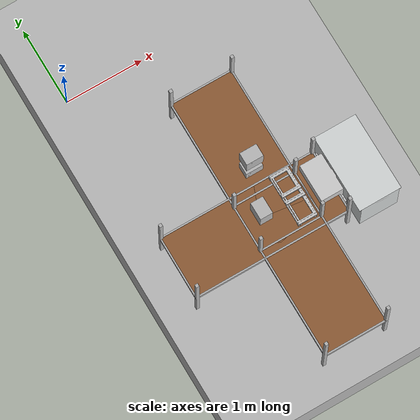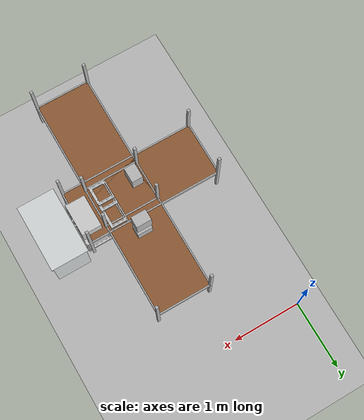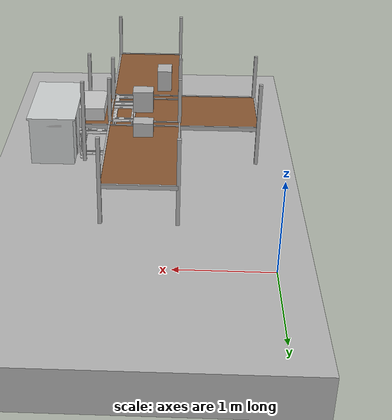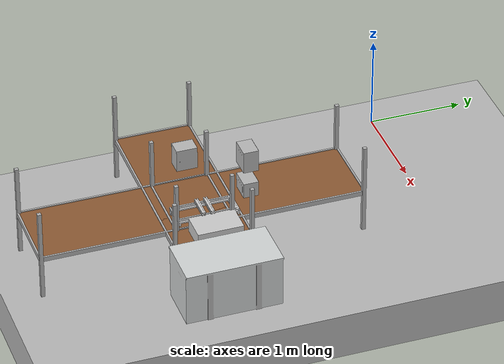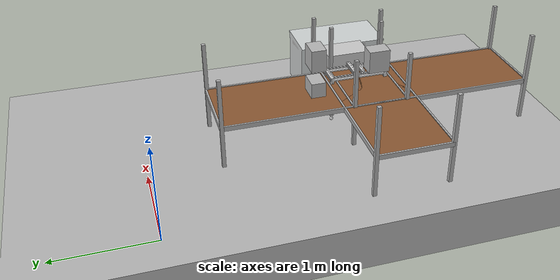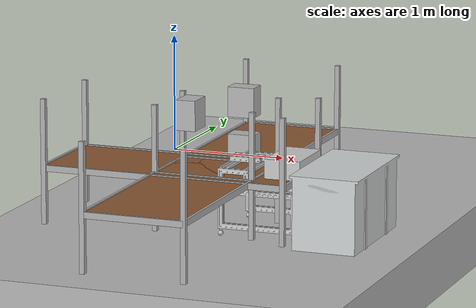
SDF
<?xml version="1.0"?>
<sdf version="1.6">
  <world name="default">

    <gui>
      <camera name="user_default">
        <pose>3.874 -2.386 1.218 0 0.115 3.124</pose> <!--UR5 View -->
      </camera>
    </gui>

    <light name="light0" type="directional">
      <pose frame="">0 -18.818 8 0.75 -0 0</pose>
      <diffuse>0.5 0.5 0.5 1</diffuse>
      <specular>0.1 0.1 0.1 1</specular>
      <direction>0.1 0.1 -0.9</direction>
      <attenuation>
        <range>20</range>
        <constant>0.5</constant>
        <linear>0.01</linear>
        <quadratic>0.001</quadratic>
      </attenuation>
      <cast_shadows>0</cast_shadows>
    </light>

    <light name="light3" type="directional">
      <pose frame="">3.9239 1.64974 4 0 1.2 0</pose>
      <diffuse>0.5 0.5 0.5 1</diffuse>
      <specular>0.1 0.1 0.1 1</specular>
      <direction>0.1 0.1 -0.9</direction>
      <attenuation>
        <range>20</range>
        <constant>0.5</constant>
        <linear>0.01</linear>
        <quadratic>0.001</quadratic>
      </attenuation>
      <cast_shadows>0</cast_shadows>
    </light>

    <light name="light5" type="directional">
      <pose frame="">0.454419 12.4783 5 -0.8 0 0</pose>
      <diffuse>0.5 0.5 0.5 1</diffuse>
      <specular>0.1 0.1 0.1 1</specular>
      <direction>0.1 0.1 -0.9</direction>
      <attenuation>
        <range>20</range>
        <constant>0.5</constant>
        <linear>0.01</linear>
        <quadratic>0.001</quadratic>
      </attenuation>
      <cast_shadows>0</cast_shadows>
    </light>

    <scene>
		<shadows>false</shadows>
		<ambient>0.5 0.5 0.5 1.0</ambient>
    <grid>false</grid>
      <sky>
        <time>22</time>
        <sunrise>20</sunrise>
        <sunset>21</sunset>
        <clouds>
          <humidity>0</humidity>
        </clouds>
      </sky>
    </scene>

    <include>
      <uri>model://ground_plane</uri>
    </include>

  <include>
      <uri>model://moon_surface</uri>
      <pose>0 0 -0.25 0 0 0</pose>
	</include>

  <!-- NOISE BOX -->
  <!-- NOISE BOX -->

  <!-- RACK 1 -->
  <include>
      <uri>model://rack</uri>
      <name>rack1</name>
      <pose>1.05 -2.455 0.0 0 -0 3.14</pose>
	</include>

  <include>
      <uri>model://boxes/box_1</uri>
      <name>box1</name>
      <pose>1.13 -2.455 0.89 0 0 0.0</pose>
	</include>

  <!-- RACK 1 -->

  <!-- RACK 2 -->
  <include>
      <uri>model://rack</uri>
      <name>rack2</name>
      <pose>1.35 -1.755 0.0 0 0 1.57</pose>
	</include>

  <include>
      <uri>model://boxes/box_3</uri>
      <name>box3</name>
      <pose>1.35 -1.865 0.51 0 0 -1.57</pose>
	</include>

  <include>
      <uri>model://boxes/box_49</uri>
      <name>box49</name>
      <pose>1.35 -1.865 0.89 0 0 -1.57</pose>
	</include>
  <!-- RACK 2 -->

  <!-- RACK 3 -->
  <include>
      <uri>model://rack</uri>
      <name>rack3</name>
      <pose>1.35 -3.155 0.0 0 0 -1.57</pose>
	</include>
  <!-- RACK 3 -->

  <include>
      <uri>model://arm_base</uri>
      <name>arm_base</name>
      <pose>1.78 -2.4 0.253 0 -0 0.0</pose>
	</include>

  <include>
      <uri>model://drop_table</uri>
      <name>drop_table</name>
      <pose>2.4 -2.45 0 0 -0 0.0</pose>
	</include>

  <plugin name="gazebo_link_ur5_attacher" filename="libgazebo_link_ur5_attacher.so"/>

  <plugin name="gazebo_ros_state" filename="libgazebo_ros_state.so">
      <ros>
        <namespace>/_makeit</namespace>
      </ros>

      <update_rate>1.0</update_rate>
  </plugin>

  </world>
</sdf>

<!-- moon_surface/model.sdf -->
<sdf version="1.6">
  <model name="moon_surface">
    <static>true</static>

    <link name="link">
      <pose>0 0 0.003 0 0 0</pose>

      <visual name="visual1">
        <cast_shadows>false</cast_shadows>
        <geometry>
          <mesh><uri>model://moon_surface/meshes/moon_surface.dae</uri></mesh>
        </geometry>
        <material>
          <shader type='pixel'/>
        </material>
        <pose>0 0 0 0 0 0</pose>
        <transparency>0</transparency>
      </visual>
    </link>
  </model>
</sdf>

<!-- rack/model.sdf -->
<sdf version='1.6'>
  <model name='rack'>
    <link name="surface">
      <inertial>
          <mass>0.1</mass>
          <inertia>
              <ixx>0.00001</ixx>
              <ixy>0.000</ixy>
              <ixz>0.000</ixz>
              <iyy>0.00001</iyy>
              <iyz>0.000</iyz>
              <izz>0.00001</izz>
          </inertia>
      </inertial>
      <visual name='surface_visual'>
        <pose relative_to=''>0 0 0.45 0 0 0</pose>
        <geometry>
          <box>
            <size>2 0.8 0.03</size>
          </box>
        </geometry>
        <material>
          <ambient>0.55 0.35 0.2 1</ambient>
          <diffuse>0.55 0.35 0.2 1</diffuse>
          <specular>0.1 0.1 0.1 1</specular>
          <emissive>0 0 0 1</emissive>
        </material>
        <transparency>0</transparency>
        <cast_shadows>1</cast_shadows>
      </visual>
      <collision name='surface_collision'>
        <pose relative_to=''>0 0 0.45 0 0 0</pose>
        <laser_retro>0</laser_retro>
        <max_contacts>10</max_contacts>
        <geometry>
          <box>
            <size>2 0.82 0.03</size>
          </box>
        </geometry>
        <surface>
          <friction>
            <ode>
              <mu>1000000</mu>
              <mu2>1000000</mu2>
            </ode>
          </friction>
          <bounce>
            <restitution_coefficient>0</restitution_coefficient>
          </bounce>
          <contact>
            <ode>
              <kp>1e13</kp>
              <kd>1</kd>
            </ode>
          </contact>
        </surface>
      </collision>

      <visual name='left_holding_visual'>
        <pose relative_to=''>0 0.4 0.45 0 0 0</pose>
        <geometry>
          <box>
            <size>1.98 0.02 0.05</size>
          </box>
        </geometry>
        <material>
          <ambient>0.3 0.3 0.3 1</ambient>
          <diffuse>0.7 0.7 0.7 1</diffuse>
          <specular>0.01 0.01 0.01 1</specular>
          <emissive>0 0 0 1</emissive>
          <pbr>
            <metal>
              <roughness>0.8</roughness>
              <metalness>0.1</metalness>
            </metal>
          </pbr>
        </material>
        <transparency>0</transparency>
        <cast_shadows>1</cast_shadows>
      </visual>

      <visual name='right_holding_visual'>
        <pose relative_to=''>0 -0.4 0.45 0 0 0</pose>
        <geometry>
          <box>
            <size>1.98 0.02 0.05</size>
          </box>
        </geometry>
        <material>
          <ambient>0.3 0.3 0.3 1</ambient>
          <diffuse>0.7 0.7 0.7 1</diffuse>
          <specular>0.01 0.01 0.01 1</specular>
          <emissive>0 0 0 1</emissive>
          <pbr>
            <metal>
              <roughness>0.8</roughness>
              <metalness>0.1</metalness>
            </metal>
          </pbr>
        </material>
        <transparency>0</transparency>
        <cast_shadows>1</cast_shadows>
      </visual>

      <visual name='front_holding_visual'>
        <pose relative_to=''>1.0 0 0.45 0 0 1.57</pose>
        <geometry>
          <box>
            <size>0.8 0.02 0.05</size>
          </box>
        </geometry>
        <material>
          <ambient>0.3 0.3 0.3 1</ambient>
          <diffuse>0.7 0.7 0.7 1</diffuse>
          <specular>0.01 0.01 0.01 1</specular>
          <emissive>0 0 0 1</emissive>
          <pbr>
            <metal>
              <roughness>0.8</roughness>
              <metalness>0.1</metalness>
            </metal>
          </pbr>
        </material>
        <transparency>0</transparency>
        <cast_shadows>1</cast_shadows>
      </visual>

      <visual name='back_holding_visual'>
        <pose relative_to=''>-1.0 0 0.45 0 0 1.57</pose>
        <geometry>
          <box>
            <size>0.8 0.02 0.05</size>
          </box>
        </geometry>
        <material>
          <ambient>0.3 0.3 0.3 1</ambient>
          <diffuse>0.7 0.7 0.7 1</diffuse>
          <specular>0.01 0.01 0.01 1</specular>
          <emissive>0 0 0 1</emissive>
          <pbr>
            <metal>
              <roughness>0.8</roughness>
              <metalness>0.1</metalness>
            </metal>
          </pbr>
        </material>
        <transparency>0</transparency>
        <cast_shadows>1</cast_shadows>
      </visual>

      <visual name='front_left_leg_visual'>
        <pose relative_to=''>0.99 0.4 0.5 0 0 0</pose>
        <geometry>
          <box>
            <size>0.04 0.04 1.0</size>
          </box>
        </geometry>
        <material>
          <ambient>0.3 0.3 0.3 1</ambient>
          <diffuse>0.7 0.7 0.7 1</diffuse>
          <specular>0.01 0.01 0.01 1</specular>
          <emissive>0 0 0 1</emissive>
          <pbr>
            <metal>
              <roughness>0.8</roughness>
              <metalness>0.1</metalness>
            </metal>
          </pbr>
        </material>
        <cast_shadows>1</cast_shadows>
      </visual>
      <collision name='front_left_leg_collision'>
        <pose relative_to=''>0.99 0.4 0.5 0 0 0</pose>
        <laser_retro>0</laser_retro>
        <max_contacts>10</max_contacts>
        <geometry>
          <box>
            <size>0.04 0.04 1.0</size>
          </box>
        </geometry>
        <surface>
          <friction>
            <ode>
              <mu>0.1</mu>
              <mu2>0.1</mu2>
            </ode>
          </friction>
          <bounce>
            <restitution_coefficient>0</restitution_coefficient>
          </bounce>
          <contact>
            <ode>
              <kp>1e6</kp>
              <kd>1</kd>
            </ode>
          </contact>
        </surface>
      </collision>

      <visual name='front_right_leg_visual'>
        <pose relative_to=''>0.99 -0.4 0.5 0 0 0</pose>
        <geometry>
          <box>
            <size>0.04 0.04 1.0</size>
          </box>
        </geometry>
        <material>
          <ambient>0.3 0.3 0.3 1</ambient>
          <diffuse>0.7 0.7 0.7 1</diffuse>
          <specular>0.01 0.01 0.01 1</specular>
          <emissive>0 0 0 1</emissive>
          <pbr>
            <metal>
              <roughness>0.8</roughness>
              <metalness>0.1</metalness>
            </metal>
          </pbr>
        </material>
        <cast_shadows>1</cast_shadows>
      </visual>
      <collision name='front_right_leg_collision'>
        <pose relative_to=''>0.99 -0.4 0.5 0 0 0</pose>
        <laser_retro>0</laser_retro>
        <max_contacts>10</max_contacts>
        <geometry>
          <box>
            <size>0.04 0.04 1.0</size>
          </box>
        </geometry>
        <surface>
          <friction>
            <ode>
              <mu>0.1</mu>
              <mu2>0.1</mu2>
            </ode>
          </friction>
          <bounce>
            <restitution_coefficient>0</restitution_coefficient>
          </bounce>
          <contact>
            <ode>
              <kp>1e6</kp>
              <kd>1</kd>
            </ode>
          </contact>
        </surface>
      </collision>

      <visual name='back_left_leg_visual'>
        <pose relative_to=''>-0.99 0.4 0.5 0 0 0</pose>
        <geometry>
          <box>
            <size>0.04 0.04 1.0</size>
          </box>
        </geometry>
        <material>
          <ambient>0.3 0.3 0.3 1</ambient>
          <diffuse>0.7 0.7 0.7 1</diffuse>
          <specular>0.01 0.01 0.01 1</specular>
          <emissive>0 0 0 1</emissive>
          <pbr>
            <metal>
              <roughness>0.8</roughness>
              <metalness>0.1</metalness>
            </metal>
          </pbr>
        </material>
        <cast_shadows>1</cast_shadows>
      </visual>
      <collision name='back_left_leg_collision'>
        <pose relative_to=''>-0.99 0.4 0.5 0 0 0</pose>
        <laser_retro>0</laser_retro>
        <max_contacts>10</max_contacts>
        <geometry>
          <box>
            <size>0.04 0.04 1.0</size>
          </box>
        </geometry>
        <surface>
          <friction>
            <ode>
              <mu>0.1</mu>
              <mu2>0.1</mu2>
            </ode>
          </friction>
          <bounce>
            <restitution_coefficient>0</restitution_coefficient>
          </bounce>
          <contact>
            <ode>
              <kp>1e6</kp>
              <kd>1</kd>
            </ode>
          </contact>
        </surface>
      </collision>

      <visual name='back_right_leg_visual'>
        <pose relative_to=''>-0.99 -0.4 0.5 0 0 0</pose>
        <geometry>
          <box>
            <size>0.04 0.04 1.0</size>
          </box>
        </geometry>
        <material>
          <ambient>0.3 0.3 0.3 1</ambient>
          <diffuse>0.7 0.7 0.7 1</diffuse>
          <specular>0.01 0.01 0.01 1</specular>
          <emissive>0 0 0 1</emissive>
          <pbr>
            <metal>
              <roughness>0.8</roughness>
              <metalness>0.1</metalness>
            </metal>
          </pbr>
        </material>
        <cast_shadows>1</cast_shadows>
      </visual>
      <collision name='back_right_leg_collision'>
        <pose relative_to=''>-0.99 -0.4 0.5 0 0 0</pose>
        <laser_retro>0</laser_retro>
        <max_contacts>10</max_contacts>
        <geometry>
          <box>
            <size>0.04 0.04 1.0</size>
          </box>
        </geometry>
        <surface>
          <friction>
            <ode>
              <mu>0.1</mu>
              <mu2>0.1</mu2>
            </ode>
          </friction>
          <bounce>
            <restitution_coefficient>0</restitution_coefficient>
          </bounce>
          <contact>
            <ode>
              <kp>1e6</kp>
              <kd>1</kd>
            </ode>
          </contact>
        </surface>
      </collision>
    </link>

  </model>
</sdf>

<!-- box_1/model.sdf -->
<sdf version='1.7'>
  <model name='box_1'>
    <link name='link'>
      <self_collide>0</self_collide>
      <inertial>
        <pose>0 0 0 0 -0 0</pose>
        <inertia>
          <ixx>0.00220983</ixx>
          <ixy>0</ixy>
          <ixz>0</ixz>
          <iyy>0.00128087</iyy>
          <iyz>0</iyz>
          <izz>0.00244903</izz>
        </inertia>
        <mass>0.1</mass>
      </inertial>
      <enable_wind>0</enable_wind>
      <kinematic>0</kinematic>
      <pose>0 0 0 0 -0 0</pose>
      <gravity>1</gravity>
      <visual name='visual1'>
        <cast_shadows>0</cast_shadows>
        <geometry>
          <mesh>
            <uri>model://boxes/box_1/meshes/box.dae</uri>
          </mesh>
        </geometry>
        <material>
          <shader type='pixel'>
            <normal_map>__default__</normal_map>
          </shader>
          <emissive>0 0 0 1</emissive>
        </material>
        <pose>0 0 -0.12 0 -0 0</pose>
        <transparency>0</transparency>
      </visual>
      <collision name='collision_0'>
        <laser_retro>0</laser_retro>
        <max_contacts>10</max_contacts>
        <pose>0 0 0 0 -0 0</pose>
        <geometry>
          <box>
            <size>0.16 0.22 0.24</size>
          </box>
        </geometry>
        <surface>
          <friction>
            <ode>
              <mu>1</mu>
              <mu2>1</mu2>
              <fdir1>0 0 0</fdir1>
              <slip1>0</slip1>
              <slip2>0</slip2>
            </ode>
            <torsional>
              <coefficient>1</coefficient>
              <patch_radius>0</patch_radius>
              <surface_radius>0</surface_radius>
              <use_patch_radius>1</use_patch_radius>
              <ode>
                <slip>0</slip>
              </ode>
            </torsional>
          </friction>
          <bounce>
            <restitution_coefficient>0</restitution_coefficient>
            <threshold>1e+06</threshold>
          </bounce>
          <contact>
            <collide_without_contact>0</collide_without_contact>
            <collide_without_contact_bitmask>1</collide_without_contact_bitmask>
            <collide_bitmask>1</collide_bitmask>
            <ode>
              <soft_cfm>0</soft_cfm>
              <soft_erp>0.2</soft_erp>
              <kp>1e+13</kp>
              <kd>1</kd>
              <max_vel>0.01</max_vel>
              <min_depth>0</min_depth>
            </ode>
            <bullet>
              <split_impulse>1</split_impulse>
              <split_impulse_penetration_threshold>-0.01</split_impulse_penetration_threshold>
              <soft_cfm>0</soft_cfm>
              <soft_erp>0.2</soft_erp>
              <kp>1e+13</kp>
              <kd>1</kd>
            </bullet>
          </contact>
        </surface>
      </collision>
    </link>
    <static>0</static>
    <allow_auto_disable>1</allow_auto_disable>
  </model>
</sdf>

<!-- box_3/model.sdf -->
<sdf version='1.7'>
  <model name='box_3'>
    <link name='link'>
      <self_collide>0</self_collide>
      <inertial>
        <pose>0 0 0 0 -0 0</pose>
        <inertia>
          <ixx>0.00220983</ixx>
          <ixy>0</ixy>
          <ixz>0</ixz>
          <iyy>0.00128087</iyy>
          <iyz>0</iyz>
          <izz>0.00244903</izz>
        </inertia>
        <mass>0.1</mass>
      </inertial>
      <enable_wind>0</enable_wind>
      <kinematic>0</kinematic>
      <pose>0 0 0 0 -0 0</pose>
      <gravity>1</gravity>
      <visual name='visual1'>
        <cast_shadows>0</cast_shadows>
        <geometry>
          <mesh>
            <uri>model://boxes/box_3/meshes/box.dae</uri>
          </mesh>
        </geometry>
        <material>
          <shader type='pixel'>
            <normal_map>__default__</normal_map>
          </shader>
          <emissive>0 0 0 1</emissive>
        </material>
        <pose>0 0 -0.12 0 -0 0</pose>
        <transparency>0</transparency>
      </visual>
      <collision name='collision_0'>
        <laser_retro>0</laser_retro>
        <max_contacts>10</max_contacts>
        <pose>0 0 0 0 -0 0</pose>
        <geometry>
          <box>
            <size>0.16 0.22 0.24</size>
          </box>
        </geometry>
        <surface>
          <friction>
            <ode>
              <mu>1</mu>
              <mu2>1</mu2>
              <fdir1>0 0 0</fdir1>
              <slip1>0</slip1>
              <slip2>0</slip2>
            </ode>
            <torsional>
              <coefficient>1</coefficient>
              <patch_radius>0</patch_radius>
              <surface_radius>0</surface_radius>
              <use_patch_radius>1</use_patch_radius>
              <ode>
                <slip>0</slip>
              </ode>
            </torsional>
          </friction>
          <bounce>
            <restitution_coefficient>0</restitution_coefficient>
            <threshold>1e+06</threshold>
          </bounce>
          <contact>
            <collide_without_contact>0</collide_without_contact>
            <collide_without_contact_bitmask>1</collide_without_contact_bitmask>
            <collide_bitmask>1</collide_bitmask>
            <ode>
              <soft_cfm>0</soft_cfm>
              <soft_erp>0.2</soft_erp>
              <kp>1e+13</kp>
              <kd>1</kd>
              <max_vel>0.01</max_vel>
              <min_depth>0</min_depth>
            </ode>
            <bullet>
              <split_impulse>1</split_impulse>
              <split_impulse_penetration_threshold>-0.01</split_impulse_penetration_threshold>
              <soft_cfm>0</soft_cfm>
              <soft_erp>0.2</soft_erp>
              <kp>1e+13</kp>
              <kd>1</kd>
            </bullet>
          </contact>
        </surface>
      </collision>
    </link>
    <static>0</static>
    <allow_auto_disable>1</allow_auto_disable>
  </model>
</sdf>

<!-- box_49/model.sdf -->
<sdf version='1.7'>
  <model name='box_49'>
    <link name='link'>
      <self_collide>0</self_collide>
      <inertial>
        <pose>0 0 0 0 -0 0</pose>
        <inertia>
          <ixx>0.00220983</ixx>
          <ixy>0</ixy>
          <ixz>0</ixz>
          <iyy>0.00128087</iyy>
          <iyz>0</iyz>
          <izz>0.00244903</izz>
        </inertia>
        <mass>0.1</mass>
      </inertial>
      <enable_wind>0</enable_wind>
      <kinematic>0</kinematic>
      <pose>0 0 0 0 -0 0</pose>
      <gravity>1</gravity>
      <visual name='visual1'>
        <cast_shadows>0</cast_shadows>
        <geometry>
          <mesh>
            <uri>model://boxes/box_49/meshes/box.dae</uri>
          </mesh>
        </geometry>
        <material>
          <shader type='pixel'>
            <normal_map>__default__</normal_map>
          </shader>
          <emissive>0 0 0 1</emissive>
        </material>
        <pose>0 0 -0.12 0 -0 0</pose>
        <transparency>0</transparency>
      </visual>
      <collision name='collision_0'>
        <laser_retro>0</laser_retro>
        <max_contacts>10</max_contacts>
        <pose>0 0 0 0 -0 0</pose>
        <geometry>
          <box>
            <size>0.16 0.22 0.24</size>
          </box>
        </geometry>
        <surface>
          <friction>
            <ode>
              <mu>1</mu>
              <mu2>1</mu2>
              <fdir1>0 0 0</fdir1>
              <slip1>0</slip1>
              <slip2>0</slip2>
            </ode>
            <torsional>
              <coefficient>1</coefficient>
              <patch_radius>0</patch_radius>
              <surface_radius>0</surface_radius>
              <use_patch_radius>1</use_patch_radius>
              <ode>
                <slip>0</slip>
              </ode>
            </torsional>
          </friction>
          <bounce>
            <restitution_coefficient>0</restitution_coefficient>
            <threshold>1e+06</threshold>
          </bounce>
          <contact>
            <collide_without_contact>0</collide_without_contact>
            <collide_without_contact_bitmask>1</collide_without_contact_bitmask>
            <collide_bitmask>1</collide_bitmask>
            <ode>
              <soft_cfm>0</soft_cfm>
              <soft_erp>0.2</soft_erp>
              <kp>1e+13</kp>
              <kd>1</kd>
              <max_vel>0.01</max_vel>
              <min_depth>0</min_depth>
            </ode>
            <bullet>
              <split_impulse>1</split_impulse>
              <split_impulse_penetration_threshold>-0.01</split_impulse_penetration_threshold>
              <soft_cfm>0</soft_cfm>
              <soft_erp>0.2</soft_erp>
              <kp>1e+13</kp>
              <kd>1</kd>
            </bullet>
          </contact>
        </surface>
      </collision>
    </link>
    <static>0</static>
    <allow_auto_disable>1</allow_auto_disable>
  </model>
</sdf>

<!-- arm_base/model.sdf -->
<sdf version='1.7'>
  <model name='arm_base'>
    <link name='link'>
      <inertial>
        <mass>1</mass>
        <inertia>
          <ixx>0.166667</ixx>
          <ixy>0</ixy>
          <ixz>0</ixz>
          <iyy>0.166667</iyy>
          <iyz>0</iyz>
          <izz>0.166667</izz>
        </inertia>
        <pose>0 0 0 0 -0 0</pose>
      </inertial>
      <self_collide>0</self_collide>
      <enable_wind>0</enable_wind>
      <kinematic>0</kinematic>
      <pose>0 0 0 0 -0 0</pose>
      <gravity>1</gravity>
      <visual name='visual1'>
        <cast_shadows>0</cast_shadows>
        <geometry>
          <mesh>
            <uri>model://arm_base/meshes/arm_base.dae</uri>
          </mesh>
        </geometry>
        <material>
          <shader type='pixel'>
            <normal_map>__default__</normal_map>
          </shader>
          <emissive>0 0 0 1</emissive>

        </material>
        <pose>0 0 -0.25 0 -0 0</pose>
        <transparency>0</transparency>
        <pose>0 0 0 0 -0 0</pose>
        <transparency>0</transparency>
      </visual>
      <collision name='collision'>
        <laser_retro>0</laser_retro>
        <max_contacts>10</max_contacts>
        <pose>0 0 0 0 -0 0</pose>
        <geometry>
          <box>
            <size>0.7 0.7 0.52</size>
          </box>
        </geometry>
        <surface>
          <friction>
            <ode>
              <mu>1</mu>
              <mu2>1</mu2>
              <fdir1>0 0 0</fdir1>
              <slip1>0</slip1>
              <slip2>0</slip2>
            </ode>
            <torsional>
              <coefficient>1</coefficient>
              <patch_radius>0</patch_radius>
              <surface_radius>0</surface_radius>
              <use_patch_radius>1</use_patch_radius>
              <ode>
                <slip>0</slip>
              </ode>
            </torsional>
          </friction>
          <bounce>
            <restitution_coefficient>0</restitution_coefficient>
            <threshold>1e+06</threshold>
          </bounce>
          <contact>
            <collide_without_contact>0</collide_without_contact>
            <collide_without_contact_bitmask>1</collide_without_contact_bitmask>
            <collide_bitmask>1</collide_bitmask>
            <ode>
              <soft_cfm>0</soft_cfm>
              <soft_erp>0.2</soft_erp>
              <kp>1e+13</kp>
              <kd>1</kd>
              <max_vel>0.01</max_vel>
              <min_depth>0</min_depth>
            </ode>
            <bullet>
              <split_impulse>1</split_impulse>
              <split_impulse_penetration_threshold>-0.01</split_impulse_penetration_threshold>
              <soft_cfm>0</soft_cfm>
              <soft_erp>0.2</soft_erp>
              <kp>1e+13</kp>
              <kd>1</kd>
            </bullet>
          </contact>
        </surface>
      </collision>
    </link>
    <static>1</static>
    <allow_auto_disable>1</allow_auto_disable>
  </model>
</sdf>

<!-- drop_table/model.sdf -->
<sdf version='1.7'>
  <model name='drop_table'>
    <link name='link'>
      <inertial>
        <mass>1</mass>
        <inertia>
          <ixx>0.166667</ixx>
          <ixy>0</ixy>
          <ixz>0</ixz>
          <iyy>0.166667</iyy>
          <iyz>0</iyz>
          <izz>0.166667</izz>
        </inertia>
        <pose>0 0 0 0 -0 0</pose>
      </inertial>
      <self_collide>0</self_collide>
      <enable_wind>0</enable_wind>
      <kinematic>0</kinematic>
      <pose>0 0 0 0 -0 0</pose>
      <gravity>1</gravity>
      <visual name='visual1'>
        <cast_shadows>0</cast_shadows>
        <geometry>
          <mesh>
            <uri>model://drop_table/meshes/table.dae</uri>
          </mesh>
        </geometry>
        <material>
          <shader type='pixel'>
            <normal_map>__default__</normal_map>
          </shader>
          <emissive>0 0 0 1</emissive>

        </material>
        <pose>0 0 0 0 -0 0</pose>
        <transparency>0</transparency>
        <pose>0 0 0 0 -0 0</pose>
        <transparency>0</transparency>
      </visual>
      <collision name='collision'>
        <laser_retro>0</laser_retro>
        <max_contacts>10</max_contacts>
        <pose>0 0 0.29 0 -0 0</pose>
        <geometry>
          <box>
            <size>0.5 1 0.58</size>
          </box>
        </geometry>
        <surface>
          <friction>
            <ode>
              <mu>1</mu>
              <mu2>1</mu2>
              <fdir1>0 0 0</fdir1>
              <slip1>0</slip1>
              <slip2>0</slip2>
            </ode>
            <torsional>
              <coefficient>1</coefficient>
              <patch_radius>0</patch_radius>
              <surface_radius>0</surface_radius>
              <use_patch_radius>1</use_patch_radius>
              <ode>
                <slip>0</slip>
              </ode>
            </torsional>
          </friction>
          <bounce>
            <restitution_coefficient>0</restitution_coefficient>
            <threshold>1e+06</threshold>
          </bounce>
          <contact>
            <collide_without_contact>0</collide_without_contact>
            <collide_without_contact_bitmask>1</collide_without_contact_bitmask>
            <collide_bitmask>1</collide_bitmask>
            <ode>
              <soft_cfm>0</soft_cfm>
              <soft_erp>0.2</soft_erp>
              <kp>1e+13</kp>
              <kd>1</kd>
              <max_vel>0.01</max_vel>
              <min_depth>0</min_depth>
            </ode>
            <bullet>
              <split_impulse>1</split_impulse>
              <split_impulse_penetration_threshold>-0.01</split_impulse_penetration_threshold>
              <soft_cfm>0</soft_cfm>
              <soft_erp>0.2</soft_erp>
              <kp>1e+13</kp>
              <kd>1</kd>
            </bullet>
          </contact>
        </surface>
      </collision>
    </link>
    <static>1</static>
    <allow_auto_disable>1</allow_auto_disable>
  </model>
</sdf>
